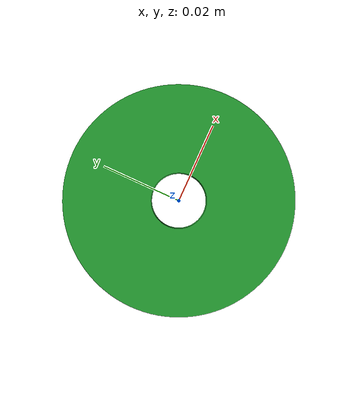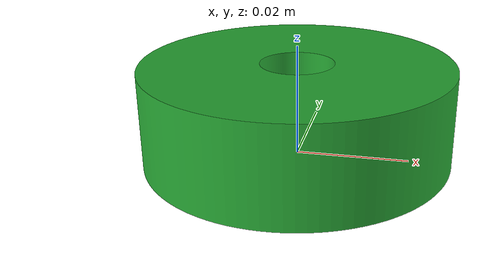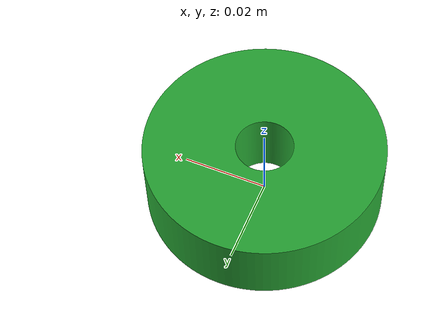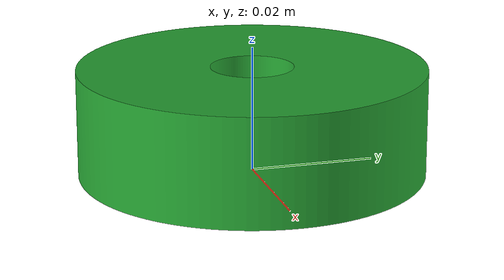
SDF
<sdf version='1.6'>
  <model name='hanoi_tower_d500'>
    <link name='token_d500_link'>
      <pose frame=''>0 0 0 0 -0 0</pose>
      <inertial>
        <pose frame=''>0 0 0.0085 0 -0 0</pose>
        <mass>0.45</mass>
        <inertia>
          <ixx>9.24e-05</ixx>
          <ixy>0</ixy>
          <ixz>0</ixz>
          <iyy>9.24e-05</iyy>
          <iyz>0</iyz>
          <izz>0.000163125</izz>
        </inertia>
      </inertial>
      <collision name='token_d500_link_fixed_joint_lump__collision_d500_b1_collision'>
        <pose frame=''>0 0 0.0085 0 -0 0</pose>
        <geometry>
          <mesh>
            <scale>1 1 1</scale>
            <uri>model://hanoi_tower_d500/meshes/token-500.stl</uri>
          </mesh>
        </geometry>
        <surface>
          <contact>
          <ode>
            <kp>1e15</kp>
            <kd>1e13</kd>
          </ode>
        </contact>
          <friction>
            <ode>
              <mu>10</mu>
              <mu2>10</mu2>
              <fdir1>1 1 1</fdir1>
            </ode>
          </friction>
          </surface>
      </collision>
      <visual name='token_d500_link_visual'>
        <pose frame=''>0 0 0.0085 0 -0 0</pose>
        <geometry>
          <mesh>
            <scale>1 1 1</scale>
            <uri>model://hanoi_tower_d500/meshes/token-500.dae</uri>
          </mesh>
        </geometry>
        <material>
          <script>
            <name>Gazebo/Green</name>
            <uri>file://media/materials/scripts/gazebo.material</uri>
          </script>
        </material>
      </visual>
      <gravity>1</gravity>
    </link>
    <plugin filename="libhanoi_tower_token_plugin.so" name="hanoi_tower_token_plugin">
      <mixamorig_RightHandIndex1_z>0.4</mixamorig_RightHandIndex1_z>
      <mixamorig_RightHandIndex2_z>0.8</mixamorig_RightHandIndex2_z>
      <mixamorig_RightHandIndex3_z>0.6</mixamorig_RightHandIndex3_z>
      <token_radius>0.050</token_radius>
    </plugin>
  </model>
</sdf>
